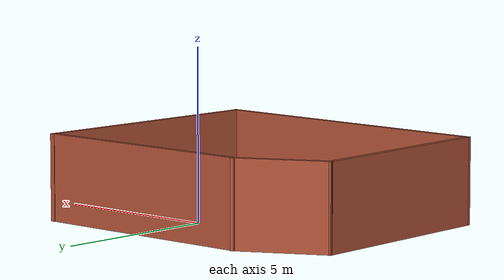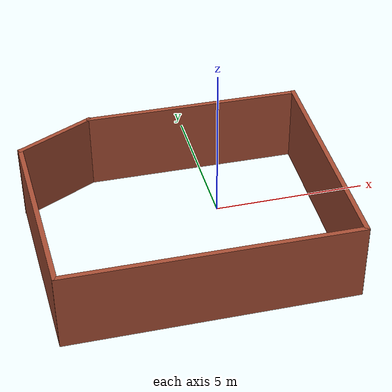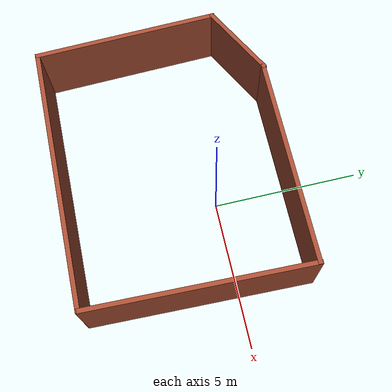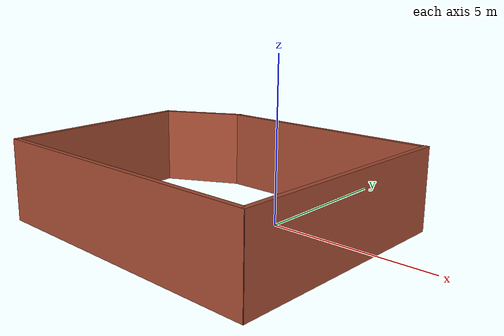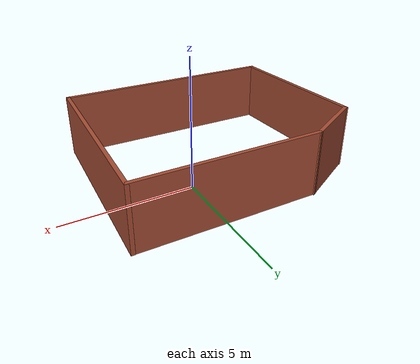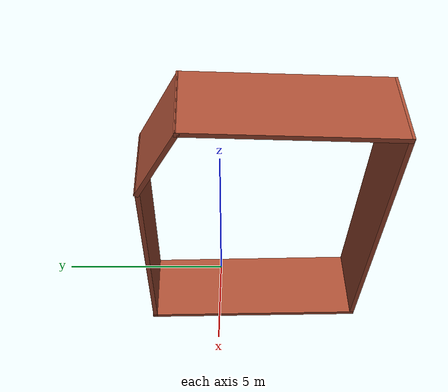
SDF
<?xml version='1.0'?>
<sdf version='1.6'>
  <model name='dld_world'>
    <pose frame=''>-1.35361 -1.19458 0 0 -0 0</pose>
    <link name='Wall_2'>
      <collision name='Wall_2_Collision'>
        <geometry>
          <box>
            <size>6.24868 0.15 2.5</size>
          </box>
        </geometry>
        <pose frame=''>0 0 1.25 0 -0 0</pose>
      </collision>
      <visual name='Wall_2_Visual'>
        <pose frame=''>0 0 1.25 0 -0 0</pose>
        <geometry>
          <box>
            <size>6.24868 0.15 2.5</size>
          </box>
        </geometry>
        <material>
          <script>
            <uri>file://media/materials/scripts/gazebo.material</uri>
            <name>Gazebo/Bricks</name>
          </script>
          <ambient>1 1 1 1</ambient>
        </material>
      </visual>
      <pose frame=''>-4.5219 -0.56672 0 0 0 -1.53535</pose>
    </link>
    <link name='Wall_3'>
      <collision name='Wall_3_Collision'>
        <geometry>
          <box>
            <size>8.9697 0.15 2.5</size>
          </box>
        </geometry>
        <pose frame=''>0 0 1.25 0 -0 0</pose>
      </collision>
      <visual name='Wall_3_Visual'>
        <pose frame=''>0 0 1.25 0 -0 0</pose>
        <geometry>
          <box>
            <size>8.9697 0.15 2.5</size>
          </box>
        </geometry>
        <material>
          <script>
            <uri>file://media/materials/scripts/gazebo.material</uri>
            <name>Gazebo/Bricks</name>
          </script>
          <ambient>1 1 1 1</ambient>
        </material>
      </visual>
      <pose frame=''>-0.004266 -3.67672 0 0 0 -0.011191</pose>
    </link>
    <link name='Wall_4'>
      <collision name='Wall_4_Collision'>
        <geometry>
          <box>
            <size>7.50104 0.15 2.5</size>
          </box>
        </geometry>
        <pose frame=''>0 0 1.25 0 -0 0</pose>
      </collision>
      <visual name='Wall_4_Visual'>
        <pose frame=''>0 0 1.25 0 -0 0</pose>
        <geometry>
          <box>
            <size>7.50104 0.15 2.5</size>
          </box>
        </geometry>
        <material>
          <script>
            <uri>file://media/materials/scripts/gazebo.material</uri>
            <name>Gazebo/Bricks</name>
          </script>
          <ambient>1 1 1 1</ambient>
        </material>
      </visual>
      <pose frame=''>4.52966 -0.039008 0 0 -0 1.54056</pose>
    </link>
    <link name='Wall_5'>
      <collision name='Wall_5_Collision'>
        <geometry>
          <box>
            <size>7.07234 0.15 2.5</size>
          </box>
        </geometry>
        <pose frame=''>0 0 1.25 0 -0 0</pose>
      </collision>
      <visual name='Wall_5_Visual'>
        <pose frame=''>0 0 1.25 0 -0 0</pose>
        <geometry>
          <box>
            <size>7.07234 0.15 2.5</size>
          </box>
        </geometry>
        <material>
          <script>
            <uri>file://media/materials/scripts/gazebo.material</uri>
            <name>Gazebo/Bricks</name>
          </script>
          <ambient>1 1 1 1</ambient>
        </material>
      </visual>
      <pose frame=''>1.16655 3.6545 0 0 -0 3.13209</pose>
    </link>
    <link name='Wall_6'>
      <collision name='Wall_6_Collision'>
        <geometry>
          <box>
            <size>2.7732 0.15 2.5</size>
          </box>
        </geometry>
        <pose frame=''>0 0 1.25 0 -0 0</pose>
      </collision>
      <visual name='Wall_6_Visual'>
        <pose frame=''>0 0 1.25 0 -0 0</pose>
        <geometry>
          <box>
            <size>2.7732 0.15 2.5</size>
          </box>
        </geometry>
        <material>
          <script>
            <uri>file://media/materials/scripts/gazebo.material</uri>
            <name>Gazebo/Bricks</name>
          </script>
          <ambient>1 1 1 1</ambient>
        </material>
      </visual>
      <pose frame=''>-3.4556 3.09067 0 0 0 -2.6579</pose>
    </link>
    <static>1</static>
  </model>
</sdf>
